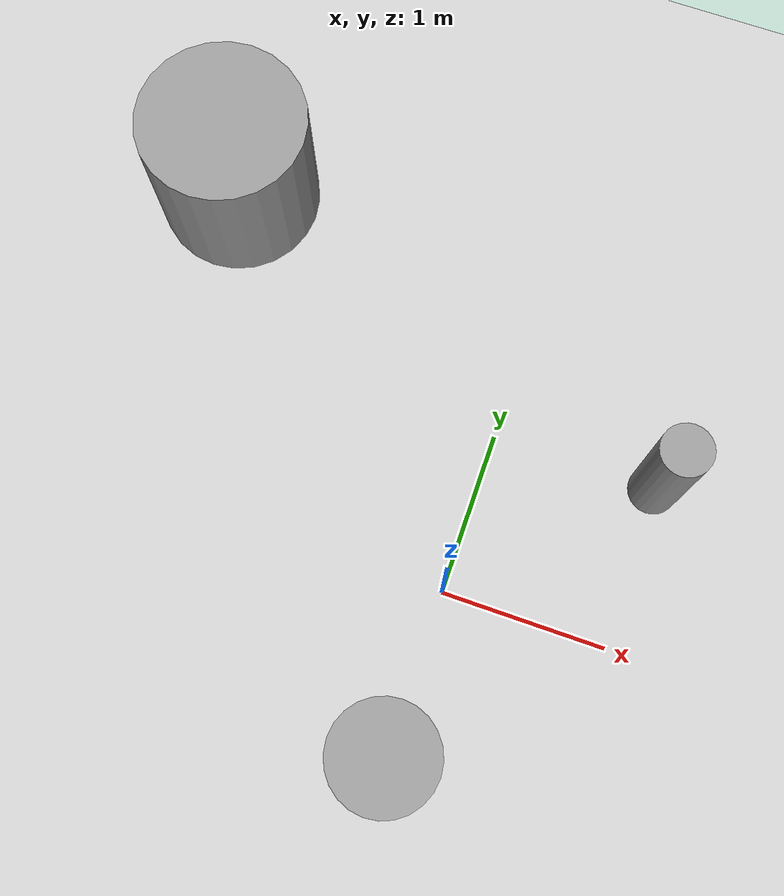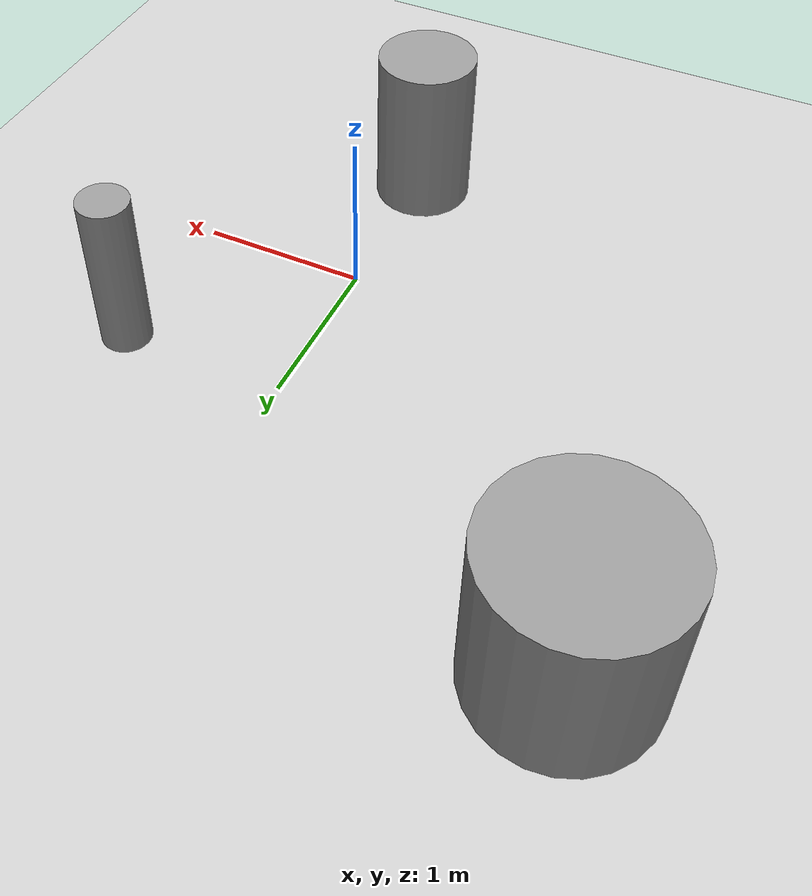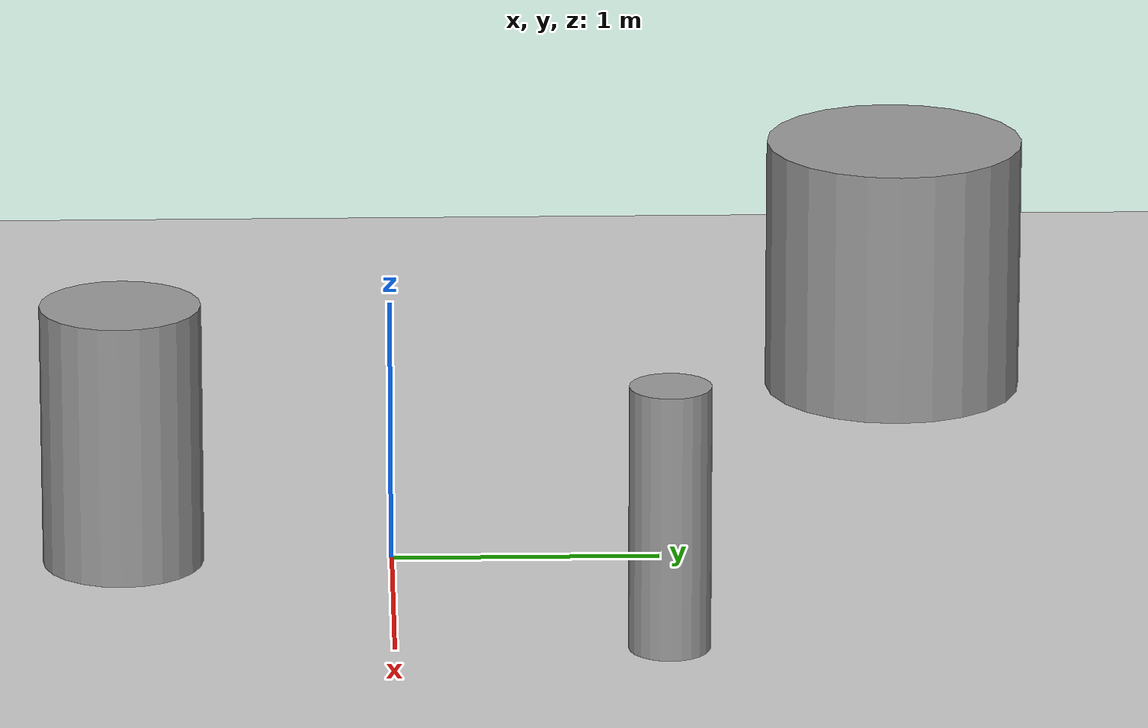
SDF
<?xml version="1.0" ?>
<sdf version='1.6'>
  <world name='default'>
    <light name='sun' type='directional'>
      <cast_shadows>1</cast_shadows>
      <pose frame=''>0 0 10 0 -0 0</pose>
      <diffuse>0.8 0.8 0.8 1</diffuse>
      <specular>0.2 0.2 0.2 1</specular>
      <attenuation>
        <range>1000</range>
        <constant>0.9</constant>
        <linear>0.01</linear>
        <quadratic>0.001</quadratic>
      </attenuation>
      <direction>-0.5 0.1 -0.9</direction>
    </light>
    <model name='ground_plane'>
      <static>1</static>
      <link name='link'>
        <collision name='collision'>
          <geometry>
            <plane>
              <normal>0 0 1</normal>
              <size>100 100</size>
            </plane>
          </geometry>
          <surface>
            <friction>
              <ode>
                <mu>100</mu>
                <mu2>50</mu2>
              </ode>
              <torsional>
                <ode/>
              </torsional>
            </friction>
            <contact>
              <ode/>
            </contact>
            <bounce/>
          </surface>
          <max_contacts>10</max_contacts>
        </collision>
        <visual name='visual'>
          <cast_shadows>0</cast_shadows>
          <geometry>
            <plane>
              <normal>0 0 1</normal>
              <size>100 100</size>
            </plane>
          </geometry>
          <material>
            <script>
              <uri>file://media/materials/scripts/gazebo.material</uri>
              <name>Gazebo/Grey</name>
            </script>
          </material>
        </visual>
        <self_collide>0</self_collide>
        <kinematic>0</kinematic>
        <gravity>1</gravity>
      </link>
    </model>
    <physics name='default_physics' default='0' type='ode'>
      <max_step_size>0.01</max_step_size>
      <real_time_factor>1</real_time_factor>
      <real_time_update_rate>100</real_time_update_rate>
    </physics>
    <gravity>0 0 -9.8</gravity>
    <magnetic_field>6e-06 2.3e-05 -4.2e-05</magnetic_field>
    <atmosphere type='adiabatic'/>
    <scene>
      <ambient>0.4 0.4 0.4 1</ambient>
      <background>0.7 0.7 0.7 1</background>
      <shadows>1</shadows>
    </scene>
    <spherical_coordinates>
      <surface_model>EARTH_WGS84</surface_model>
      <latitude_deg>0</latitude_deg>
      <longitude_deg>0</longitude_deg>
      <elevation>0</elevation>
      <heading_deg>0</heading_deg>
    </spherical_coordinates>
    <model name='unit_cylinder_0'>
      <pose frame=''>-2.02576 1.99686 0.5 0 -0 0</pose>
      <static>1</static>
      <link name='link'>
        <inertial>
          <mass>1</mass>
          <inertia>
            <ixx>0.145833</ixx>
            <ixy>0</ixy>
            <ixz>0</ixz>
            <iyy>0.145833</iyy>
            <iyz>0</iyz>
            <izz>0.125</izz>
          </inertia>
        </inertial>
        <collision name='collision'>
          <geometry>
            <cylinder>
              <radius>0.5</radius>
              <length>1</length>
            </cylinder>
          </geometry>
          <max_contacts>10</max_contacts>
          <surface>
            <contact>
              <ode/>
            </contact>
            <bounce/>
            <friction>
              <torsional>
                <ode/>
              </torsional>
              <ode/>
            </friction>
          </surface>
        </collision>
        <visual name='visual'>
          <geometry>
            <cylinder>
              <radius>0.5</radius>
              <length>1</length>
            </cylinder>
          </geometry>
          <material>
            <script>
              <name>Gazebo/Grey</name>
              <uri>file://media/materials/scripts/gazebo.material</uri>
            </script>
          </material>
        </visual>
        <self_collide>0</self_collide>
        <kinematic>0</kinematic>
        <gravity>1</gravity>
      </link>
    </model>
    <model name='unit_cylinder_1'>
      <pose frame=''>1.0 1.0 0.5 0 0 0</pose>
      <static>1</static>
      <link name='link'>
        <inertial>
          <mass>1</mass>
          <inertia>
            <ixx>0.145833</ixx>
            <ixy>0</ixy>
            <ixz>0</ixz>
            <iyy>0.145833</iyy>
            <iyz>0</iyz>
            <izz>0.125</izz>
          </inertia>
        </inertial>
        <collision name='collision'>
          <geometry>
            <cylinder>
              <radius>0.15</radius>
              <length>1</length>
            </cylinder>
          </geometry>
          <max_contacts>10</max_contacts>
          <surface>
            <contact>
              <ode/>
            </contact>
            <bounce/>
            <friction>
              <torsional>
                <ode/>
              </torsional>
              <ode/>
            </friction>
          </surface>
        </collision>
        <visual name='visual'>
          <geometry>
            <cylinder>
              <radius>0.15</radius>
              <length>1</length>
            </cylinder>
          </geometry>
          <material>
            <script>
              <name>Gazebo/Grey</name>
              <uri>file://media/materials/scripts/gazebo.material</uri>
            </script>
          </material>
        </visual>
        <self_collide>0</self_collide>
        <kinematic>0</kinematic>
        <gravity>1</gravity>
      </link>
    </model>
    <model name='unit_cylinder_2'>
      <pose frame=''>0 -1 0.5 0 0 0</pose>
      <static>1</static>
      <link name='link'>
        <inertial>
          <mass>1</mass>
          <inertia>
            <ixx>0.145833</ixx>
            <ixy>0</ixy>
            <ixz>0</ixz>
            <iyy>0.145833</iyy>
            <iyz>0</iyz>
            <izz>0.125</izz>
          </inertia>
        </inertial>
        <collision name='collision'>
          <geometry>
            <cylinder>
              <radius>0.3</radius>
              <length>1</length>
            </cylinder>
          </geometry>
          <max_contacts>10</max_contacts>
          <surface>
            <contact>
              <ode/>
            </contact>
            <bounce/>
            <friction>
              <torsional>
                <ode/>
              </torsional>
              <ode/>
            </friction>
          </surface>
        </collision>
        <visual name='visual'>
          <geometry>
            <cylinder>
              <radius>0.3</radius>
              <length>1</length>
            </cylinder>
          </geometry>
          <material>
            <script>
              <name>Gazebo/Grey</name>
              <uri>file://media/materials/scripts/gazebo.material</uri>
            </script>
          </material>
        </visual>
        <self_collide>0</self_collide>
        <kinematic>0</kinematic>
        <gravity>1</gravity>
      </link>
    </model>
  </world>
</sdf>
